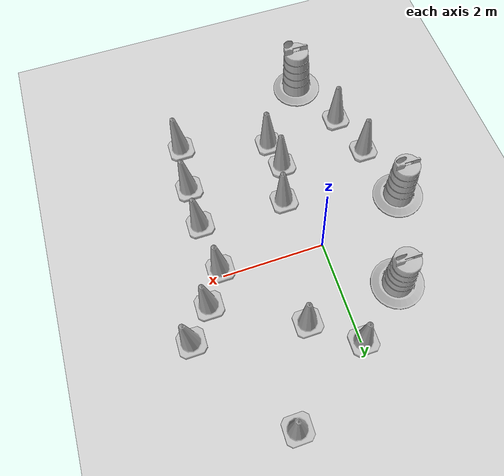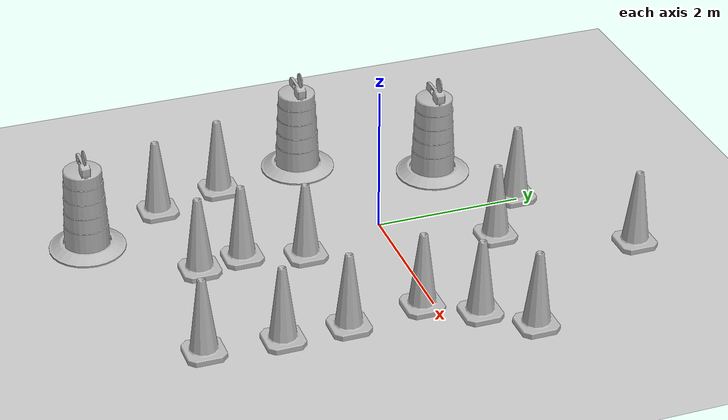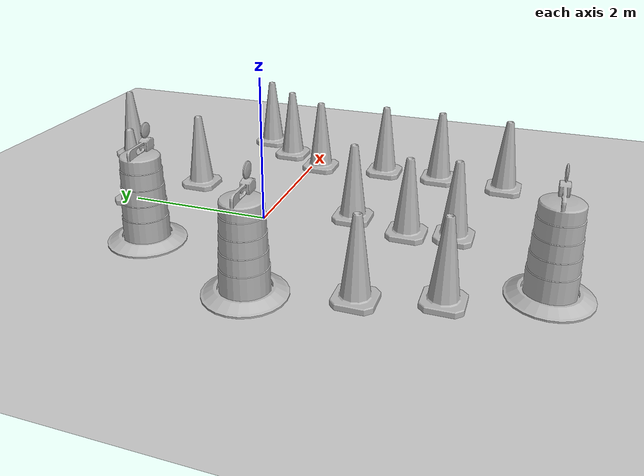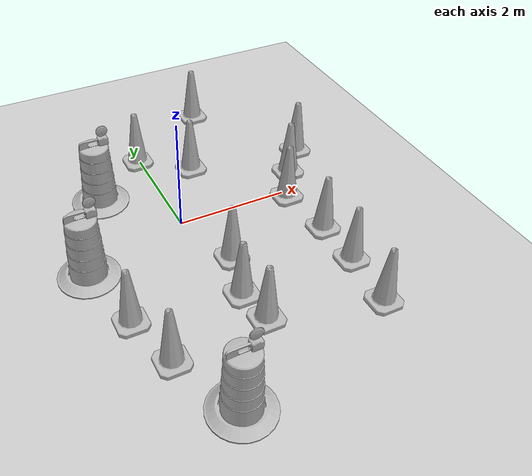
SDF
<sdf version="1.7">
 <world name="default">
  <light name="sun" type="directional">
   <pose>0 0 10 0 -0 0</pose>
   <diffuse>0.8 0.8 0.8 1</diffuse>
   <specular>0.2 0.2 0.2 1</specular>
   <attenuation>
    <range>1000</range>
    <constant>0.9</constant>
    <linear>0.01</linear>
    <quadratic>0.001</quadratic>
   </attenuation>
   <direction>-0.5 0.1 -0.9</direction>
   <spot><inner_angle>0</inner_angle><outer_angle>0</outer_angle><falloff>0</falloff></spot>
  </light>
  <model name="ground_plane">
   <static>1</static>
   <link name="link">
    <collision name="collision">
     <geometry><plane><normal>0 0 1</normal><size>100 100</size></plane></geometry>
     <surface>
      <contact><collide_bitmask>65535</collide_bitmask></contact>
      <friction><ode><mu>100</mu><mu2>50</mu2></ode></friction>
     </surface>
    </collision>
    <visual name="visual">
     <cast_shadows>0</cast_shadows>
     <geometry><plane><normal>0 0 1</normal><size>100 100</size></plane></geometry>
     <material>
      <script><uri>file://media/materials/scripts/gazebo.material</uri><name>Gazebo/Grey</name></script>
     </material>
    </visual>
   </link>
  </model>
  <gravity>0 0 -9.8</gravity>
  <magnetic_field>6e-06 2.3e-05 -4.2e-05</magnetic_field>
  <atmosphere type="adiabatic"/>
  <physics type="ode">
   <max_step_size>0.001</max_step_size>
   <real_time_factor>1</real_time_factor>
   <real_time_update_rate>1000</real_time_update_rate>
  </physics>
  <scene><ambient>0.4 0.4 0.4 1</ambient><background>0.7 0.7 0.7 1</background><shadows>1</shadows></scene>
  <audio><device>default</device></audio>
  <spherical_coordinates>
   <surface_model>EARTH_WGS84</surface_model>
   <latitude_deg>0</latitude_deg>
   <longitude_deg>0</longitude_deg>
   <elevation>0</elevation>
   <heading_deg>0</heading_deg>
  </spherical_coordinates>
  <model name="Construction Barrel">
   <link name="link">
    <inertial>
     <pose>0 0 0.4 0 -0 0</pose>
     <mass>500</mass>
     <inertia><ixx>51.2096</ixx><iyy>51.2096</iyy><izz>25</izz><ixy>0</ixy><ixz>0</ixz><iyz>0</iyz></inertia>
    </inertial>
    <collision name="collision">
     <geometry><mesh><uri>model://construction_barrel/meshes/construction_barrel.dae</uri></mesh></geometry>
    </collision>
    <visual name="visual">
     <geometry><mesh><uri>model://construction_barrel/meshes/construction_barrel.dae</uri></mesh></geometry>
    </visual>
   </link>
   <pose>-1.06093 1.18658 -1e-06 -0 5e-06 -3.4e-05</pose>
  </model>
  <model name="Construction Barrel_0">
   <link name="link">
    <inertial>
     <pose>0 0 0.4 0 -0 0</pose>
     <mass>500</mass>
     <inertia><ixx>51.2096</ixx><iyy>51.2096</iyy><izz>25</izz><ixy>0</ixy><ixz>0</ixz><iyz>0</iyz></inertia>
    </inertial>
    <collision name="collision">
     <geometry><mesh><uri>model://construction_barrel/meshes/construction_barrel.dae</uri></mesh></geometry>
    </collision>
    <visual name="visual">
     <geometry><mesh><uri>model://construction_barrel/meshes/construction_barrel.dae</uri></mesh></geometry>
    </visual>
   </link>
   <pose>-1.82292 -0.544771 -0 0 -0 -2.7e-05</pose>
  </model>
  <model name="Construction Cone_0">
   <link name="link">
    <collision name="collision">
     <geometry>
      <mesh><scale>10 10 10</scale><uri>model://construction_cone/meshes/construction_cone.dae</uri></mesh>
     </geometry>
    </collision>
    <visual name="visual">
     <geometry>
      <mesh><scale>10 10 10</scale><uri>model://construction_cone/meshes/construction_cone.dae</uri></mesh>
     </geometry>
    </visual>
    <inertial>
     <inertia><ixx>1</ixx><ixy>0</ixy><ixz>0</ixz><iyy>1</iyy><iyz>0</iyz><izz>1</izz></inertia>
     <mass>1</mass>
    </inertial>
   </link>
   <pose>2.40006 0.477201 0 -0 -0 -0</pose>
  </model>
  <model name="Construction Cone_1">
   <link name="link">
    <collision name="collision">
     <geometry>
      <mesh><scale>10 10 10</scale><uri>model://construction_cone/meshes/construction_cone.dae</uri></mesh>
     </geometry>
    </collision>
    <visual name="visual">
     <geometry>
      <mesh><scale>10 10 10</scale><uri>model://construction_cone/meshes/construction_cone.dae</uri></mesh>
     </geometry>
    </visual>
    <inertial>
     <inertia><ixx>1</ixx><ixy>0</ixy><ixz>0</ixz><iyy>1</iyy><iyz>0</iyz><izz>1</izz></inertia>
     <mass>1</mass>
    </inertial>
   </link>
   <pose>2.87687 1.03279 0 -0 -0 -0</pose>
  </model>
  <model name="Construction Cone_2">
   <link name="link">
    <collision name="collision">
     <geometry>
      <mesh><scale>10 10 10</scale><uri>model://construction_cone/meshes/construction_cone.dae</uri></mesh>
     </geometry>
    </collision>
    <visual name="visual">
     <geometry>
      <mesh><scale>10 10 10</scale><uri>model://construction_cone/meshes/construction_cone.dae</uri></mesh>
     </geometry>
    </visual>
    <inertial>
     <inertia><ixx>1</ixx><ixy>0</ixy><ixz>0</ixz><iyy>1</iyy><iyz>0</iyz><izz>1</izz></inertia>
     <mass>1</mass>
    </inertial>
   </link>
   <pose>2.13829 -1.17773 -1e-06 1e-06 -2e-06 -0</pose>
  </model>
  <model name="Construction Cone_4">
   <link name="link">
    <collision name="collision">
     <geometry>
      <mesh><scale>10 10 10</scale><uri>model://construction_cone/meshes/construction_cone.dae</uri></mesh>
     </geometry>
    </collision>
    <visual name="visual">
     <geometry>
      <mesh><scale>10 10 10</scale><uri>model://construction_cone/meshes/construction_cone.dae</uri></mesh>
     </geometry>
    </visual>
    <inertial>
     <inertia><ixx>1</ixx><ixy>0</ixy><ixz>0</ixz><iyy>1</iyy><iyz>0</iyz><izz>1</izz></inertia>
     <mass>1</mass>
    </inertial>
   </link>
   <pose>-0.046125 1.99744 0 -0 -0 -0</pose>
  </model>
  <model name="Construction Cone_5">
   <link name="link">
    <collision name="collision">
     <geometry>
      <mesh><scale>10 10 10</scale><uri>model://construction_cone/meshes/construction_cone.dae</uri></mesh>
     </geometry>
    </collision>
    <visual name="visual">
     <geometry>
      <mesh><scale>10 10 10</scale><uri>model://construction_cone/meshes/construction_cone.dae</uri></mesh>
     </geometry>
    </visual>
    <inertial>
     <inertia><ixx>1</ixx><ixy>0</ixy><ixz>0</ixz><iyy>1</iyy><iyz>0</iyz><izz>1</izz></inertia>
     <mass>1</mass>
    </inertial>
   </link>
   <pose>2.0675 -3.03072 -0 1e-06 -0 0</pose>
  </model>
  <model name="Construction Cone_6">
   <link name="link">
    <collision name="collision">
     <geometry>
      <mesh><scale>10 10 10</scale><uri>model://construction_cone/meshes/construction_cone.dae</uri></mesh>
     </geometry>
    </collision>
    <visual name="visual">
     <geometry>
      <mesh><scale>10 10 10</scale><uri>model://construction_cone/meshes/construction_cone.dae</uri></mesh>
     </geometry>
    </visual>
    <inertial>
     <inertia><ixx>1</ixx><ixy>0</ixy><ixz>0</ixz><iyy>1</iyy><iyz>0</iyz><izz>1</izz></inertia>
     <mass>1</mass>
    </inertial>
   </link>
   <pose>1.55356 3.02792 -0 0 -0 0</pose>
  </model>
  <model name="Construction Cone_3">
   <link name="link">
    <collision name="collision">
     <geometry>
      <mesh><scale>10 10 10</scale><uri>model://construction_cone/meshes/construction_cone.dae</uri></mesh>
     </geometry>
    </collision>
    <visual name="visual">
     <geometry>
      <mesh><scale>10 10 10</scale><uri>model://construction_cone/meshes/construction_cone.dae</uri></mesh>
     </geometry>
    </visual>
    <inertial>
     <inertia><ixx>1</ixx><ixy>0</ixy><ixz>0</ixz><iyy>1</iyy><iyz>0</iyz><izz>1</izz></inertia>
     <mass>1</mass>
    </inertial>
   </link>
   <pose>-1.56218 -1.76798 -0 0 -0 0</pose>
  </model>
  <model name="Construction Cone_7">
   <link name="link">
    <collision name="collision">
     <geometry>
      <mesh><scale>10 10 10</scale><uri>model://construction_cone/meshes/construction_cone.dae</uri></mesh>
     </geometry>
    </collision>
    <visual name="visual">
     <geometry>
      <mesh><scale>10 10 10</scale><uri>model://construction_cone/meshes/construction_cone.dae</uri></mesh>
     </geometry>
    </visual>
    <inertial>
     <inertia><ixx>1</ixx><ixy>0</ixy><ixz>0</ixz><iyy>1</iyy><iyz>0</iyz><izz>1</izz></inertia>
     <mass>1</mass>
    </inertial>
   </link>
   <pose>-1.29257 -2.70277 -0 0 -0 0</pose>
  </model>
  <model name="Construction Barrel_1">
   <link name="link">
    <inertial>
     <pose>0 0 0.4 0 -0 0</pose>
     <mass>500</mass>
     <inertia><ixx>51.2096</ixx><iyy>51.2096</iyy><izz>25</izz><ixy>0</ixy><ixz>0</ixz><iyz>0</iyz></inertia>
    </inertial>
    <collision name="collision">
     <geometry><mesh><uri>model://construction_barrel/meshes/construction_barrel.dae</uri></mesh></geometry>
    </collision>
    <visual name="visual">
     <geometry><mesh><uri>model://construction_barrel/meshes/construction_barrel.dae</uri></mesh></geometry>
    </visual>
   </link>
   <pose>-0.764341 -3.80396 -1e-06 0 5e-06 -2.8e-05</pose>
  </model>
  <model name="Construction Cone_8">
   <link name="link">
    <collision name="collision">
     <geometry>
      <mesh><scale>10 10 10</scale><uri>model://construction_cone/meshes/construction_cone.dae</uri></mesh>
     </geometry>
    </collision>
    <visual name="visual">
     <geometry>
      <mesh><scale>10 10 10</scale><uri>model://construction_cone/meshes/construction_cone.dae</uri></mesh>
     </geometry>
    </visual>
    <inertial>
     <inertia><ixx>1</ixx><ixy>0</ixy><ixz>0</ixz><iyy>1</iyy><iyz>0</iyz><izz>1</izz></inertia>
     <mass>1</mass>
    </inertial>
   </link>
   <pose>2.14575 -2.03936 -0 0 -0 0</pose>
  </model>
  <model name="Construction Cone_9">
   <link name="link">
    <collision name="collision">
     <geometry>
      <mesh><scale>10 10 10</scale><uri>model://construction_cone/meshes/construction_cone.dae</uri></mesh>
     </geometry>
    </collision>
    <visual name="visual">
     <geometry>
      <mesh><scale>10 10 10</scale><uri>model://construction_cone/meshes/construction_cone.dae</uri></mesh>
     </geometry>
    </visual>
    <inertial>
     <inertia><ixx>1</ixx><ixy>0</ixy><ixz>0</ixz><iyy>1</iyy><iyz>0</iyz><izz>1</izz></inertia>
     <mass>1</mass>
    </inertial>
   </link>
   <pose>0.403445 -1.16246 0 -0 -0 -0</pose>
  </model>
  <model name="Construction Cone_10">
   <link name="link">
    <collision name="collision">
     <geometry>
      <mesh><scale>10 10 10</scale><uri>model://construction_cone/meshes/construction_cone.dae</uri></mesh>
     </geometry>
    </collision>
    <visual name="visual">
     <geometry>
      <mesh><scale>10 10 10</scale><uri>model://construction_cone/meshes/construction_cone.dae</uri></mesh>
     </geometry>
    </visual>
    <inertial>
     <inertia><ixx>1</ixx><ixy>0</ixy><ixz>0</ixz><iyy>1</iyy><iyz>0</iyz><izz>1</izz></inertia>
     <mass>1</mass>
    </inertial>
   </link>
   <pose>0.786663 1.35923 -0 0 -0 0</pose>
  </model>
  <model name="Construction Cone_11">
   <link name="link">
    <collision name="collision">
     <geometry>
      <mesh><scale>10 10 10</scale><uri>model://construction_cone/meshes/construction_cone.dae</uri></mesh>
     </geometry>
    </collision>
    <visual name="visual">
     <geometry>
      <mesh><scale>10 10 10</scale><uri>model://construction_cone/meshes/construction_cone.dae</uri></mesh>
     </geometry>
    </visual>
    <inertial>
     <inertia><ixx>1</ixx><ixy>0</ixy><ixz>0</ixz><iyy>1</iyy><iyz>0</iyz><izz>1</izz></inertia>
     <mass>1</mass>
    </inertial>
   </link>
   <pose>0.177936 -1.96474 -0 0 -0 0</pose>
  </model>
  <model name="Construction Cone_12">
   <link name="link">
    <collision name="collision">
     <geometry>
      <mesh><scale>10 10 10</scale><uri>model://construction_cone/meshes/construction_cone.dae</uri></mesh>
     </geometry>
    </collision>
    <visual name="visual">
     <geometry>
      <mesh><scale>10 10 10</scale><uri>model://construction_cone/meshes/construction_cone.dae</uri></mesh>
     </geometry>
    </visual>
    <inertial>
     <inertia><ixx>1</ixx><ixy>0</ixy><ixz>0</ixz><iyy>1</iyy><iyz>0</iyz><izz>1</izz></inertia>
     <mass>1</mass>
    </inertial>
   </link>
   <pose>0.281658 -2.56912 -0 -0 -0 -0</pose>
  </model>
  <model name="Construction Cone">
   <link name="link">
    <collision name="collision">
     <geometry>
      <mesh><scale>10 10 10</scale><uri>model://construction_cone/meshes/construction_cone.dae</uri></mesh>
     </geometry>
    </collision>
    <visual name="visual">
     <geometry>
      <mesh><scale>10 10 10</scale><uri>model://construction_cone/meshes/construction_cone.dae</uri></mesh>
     </geometry>
    </visual>
    <inertial>
     <inertia><ixx>1</ixx><ixy>0</ixy><ixz>0</ixz><iyy>1</iyy><iyz>0</iyz><izz>1</izz></inertia>
     <mass>1</mass>
    </inertial>
   </link>
   <pose>2.01198 -0.153439 -0 0 -0 0</pose>
  </model>
 </world>
</sdf>
